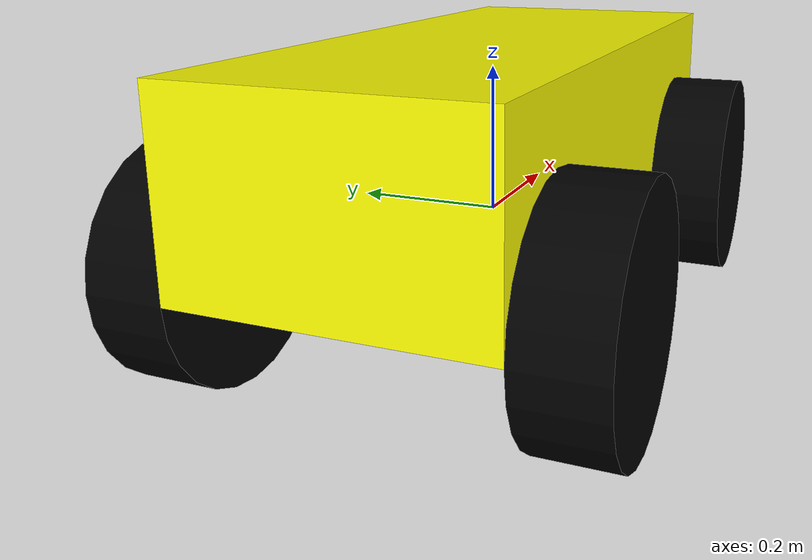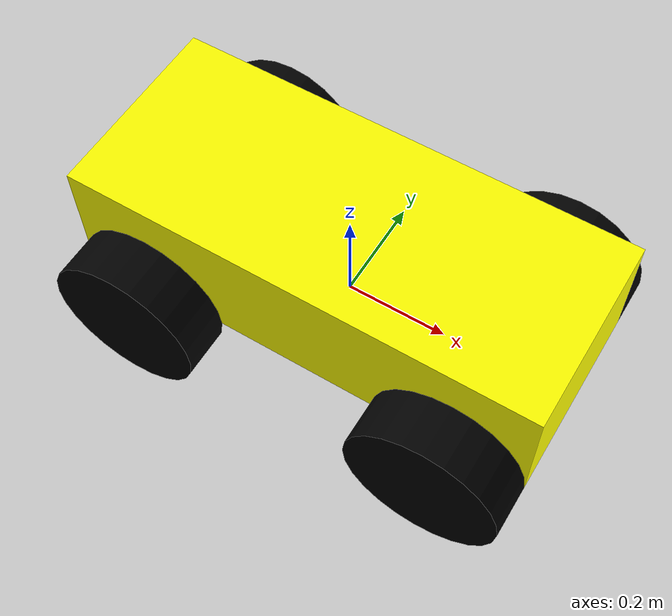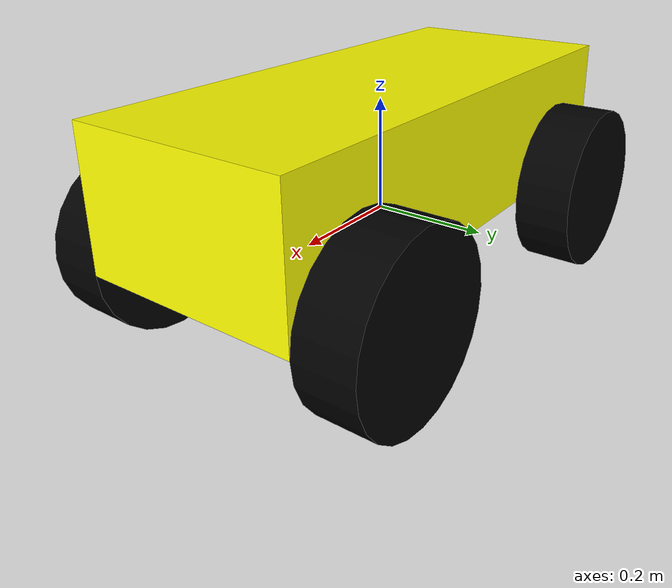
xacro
<?xml version="1.0"?>
<robot xmlns:xacro="http://www.ros.org/wiki/xacro" >

    <xacro:include filename="inertial_macros.xacro"/>

    <!-- Setup colours -->

    <material name="white">
        <color rgba="1 1 1 1" />
    </material>

     <material name="yellow">
        <color rgba="1 1 0 1"/>
    </material>

    <material name="orange">
        <color rgba="1 0.5 0 1"/>
    </material>

    <material name="blue">
        <color rgba="0 0 1 1"/>
    </material>

    <material name="black">
        <color rgba="0 0 0 1"/>
    </material>

    <material name="red">
        <color rgba="1 0 0 1"/>
    </material>

    <material name="grey">
        <color rgba="0.5 0.5 0.5 1" />
    </material>

    <!-- BASE LINK -->

    <link name="base_link">

    </link>

    <!-- BASE_FOOTPRINT LINK -->

    <joint name="base_footprint_joint" type="fixed">
        <parent link="base_link"/>
        <child link="base_footprint"/>
        <origin xyz="0 0 0" rpy="0 0 0"/>
    </joint>

    <link name="base_footprint">
    </link>

    <!-- CHASSIS LINK -->
    <!-- Chassis link set at back of robot so (car length - wheel radius/2 = 0.77m) from base link which is also centre of front wheel diff drive-->
    <joint name="chassis_joint" type="fixed">
        <parent link="base_link"/>
        <child link="chassis"/>
        <origin xyz="-0.46 0 0"/>
    </joint>

    <!-- move visual origin to middle lenght and height -->
    <link name="chassis">
        <visual>
            <origin xyz="0.46 0 0.12"/>
            <geometry>
                <box size="0.92 0.38 0.24"/>
            </geometry>
            <material name="yellow"/>
        </visual>
        <collision>
            <origin xyz="0.46 0 0.12"/>
            <geometry>
                <box size="0.92 0.38 0.24"/>
            </geometry>
        </collision>
        <xacro:inertial_box mass="20.0" x="0.92" y="0.38" z="0.24">
            <origin xyz="0.46 0 0.12" rpy="0 0 0"/>
        </xacro:inertial_box>
    </link>

    <!-- Let gazebo know what colours are used -->
    <gazebo reference="chassis">
        <material>Gazebo/Yellow</material>
    </gazebo>

    <!-- LEFT FRONT (DRIVE) WHEEL LINK -->

    <joint name="left_front_wheel_joint" type="continuous">
        <parent link="base_link"/>
        <child link="left_front_wheel"/>
        <origin xyz="0.31 0.24 0" rpy="-${pi/2} 0 0" />
        <axis xyz="0 0 1"/>
    </joint>

    <link name="left_front_wheel">
        <visual>
            <geometry>
                <cylinder radius="0.15" length="0.1"/>
            </geometry>
            <material name="black"/>
        </visual>
        <collision>
            <geometry>
                <cylinder radius="0.15" length="0.1"/>
            </geometry>
        </collision>
        <xacro:inertial_cylinder mass="1.0" length="0.1" radius="0.15">
            <origin xyz="0 0 0" rpy="0 0 0"/>
        </xacro:inertial_cylinder>
    </link>

    <gazebo reference="left_front_wheel">
        <material>Gazebo/Black</material>
        <mu1>1.5</mu1>
        <mu2>0.2</mu2>
        <fdir1>1 0 0</fdir1>
    </gazebo>

    <!-- RIGHT FRONT (DRIVE) WHEEL LINK -->

    <joint name="right_front_wheel_joint" type="continuous">
        <parent link="base_link"/>
        <child link="right_front_wheel"/>
        <origin xyz="0.31 -0.24 0" rpy="${pi/2} 0 0" />
        <axis xyz="0 0 -1"/>
    </joint>

    <link name="right_front_wheel">
        <visual>
            <geometry>
                <cylinder radius="0.15" length="0.1"/>
            </geometry>
            <material name="black"/>
        </visual>
        <collision>
            <geometry>
                <cylinder radius="0.15" length="0.1"/>
            </geometry>
        </collision>
        <xacro:inertial_cylinder mass="1.0" length="0.1" radius="0.15">
            <origin xyz="0 0 0" rpy="0 0 0"/>
        </xacro:inertial_cylinder>
    </link>

    <gazebo reference="right_front_wheel">
        <material>Gazebo/Black</material>
        <mu1>1.5</mu1>
        <mu2>0.2</mu2>
        <fdir1>1 0 0</fdir1>
    </gazebo>

    <!-- LEFT REAR WHEEL LINK -->
    <!-- TEMPORARY FIX FOR BACK WHEEL JOINT STATES - MADE JOINT TYPE FIXED. CHNAGE TO CONTINUOUS ONCE ERROR FIXED -->
    <joint name="left_rear_wheel_joint" type="continuous">
        <parent link="base_link"/>
        <child link="left_rear_wheel"/>
        <origin xyz="-0.31 0.24 0" rpy="-${pi/2} 0 0" />
        <axis xyz="0 0 1"/>
    </joint>

    <link name="left_rear_wheel">
        <visual>
            <geometry>
                <cylinder radius="0.15" length="0.1"/>
            </geometry>
            <material name="black"/>
        </visual>
        <collision>
            <geometry>
                <cylinder radius="0.15" length="0.1"/>
            </geometry>
        </collision>
        <xacro:inertial_cylinder mass="1.0" length="0.1" radius="0.15">
            <origin xyz="0 0 0" rpy="0 0 0"/>
        </xacro:inertial_cylinder>
    </link>

    <!-- Make rear wheels slide with super low friction (and spherical collisions) coefficient to allow front wheel diff drive -->
    <gazebo reference="left_rear_wheel">
        <material>Gazebo/Black</material>
        <mu1>1.5</mu1>
        <mu2>0.2</mu2>
        <fdir1>1 0 0</fdir1>
    </gazebo>

    <!-- RIGHT REAR WHEEL LINK -->
    <!-- TEMPORARY FIX FOR BACK WHEEL JOINT STATES - MADE JOINT TYPE FIXED. CHNAGE TO CONTINUOUS ONCE ERROR FIXED -->
    <joint name="right_rear_wheel_joint" type="continuous">
        <parent link="base_link"/>
        <child link="right_rear_wheel"/>
        <origin xyz="-0.31 -0.24 0" rpy="${pi/2} 0 0" />
        <axis xyz="0 0 -1"/>
    </joint>

    <link name="right_rear_wheel">
        <visual>
            <geometry>
                <cylinder radius="0.15" length="0.1"/>
            </geometry>
            <material name="black"/>
        </visual>
        <collision>
            <geometry>
                <cylinder radius="0.15" length="0.1"/>
            </geometry>
        </collision>
        <xacro:inertial_cylinder mass="1.0" length="0.1" radius="0.15">
            <origin xyz="0 0 0" rpy="0 0 0"/>
        </xacro:inertial_cylinder>
    </link>

    <gazebo reference="right_rear_wheel">
        <material>Gazebo/Black</material>
        <mu1>1.5</mu1>
        <mu2>0.2</mu2>
        <fdir1>1 0 0</fdir1>
    </gazebo>

    <gazebo reference="base_link">
        <mu1>0.000002</mu1>
        <mu2>0.000002</mu2>
    </gazebo>

</robot>
